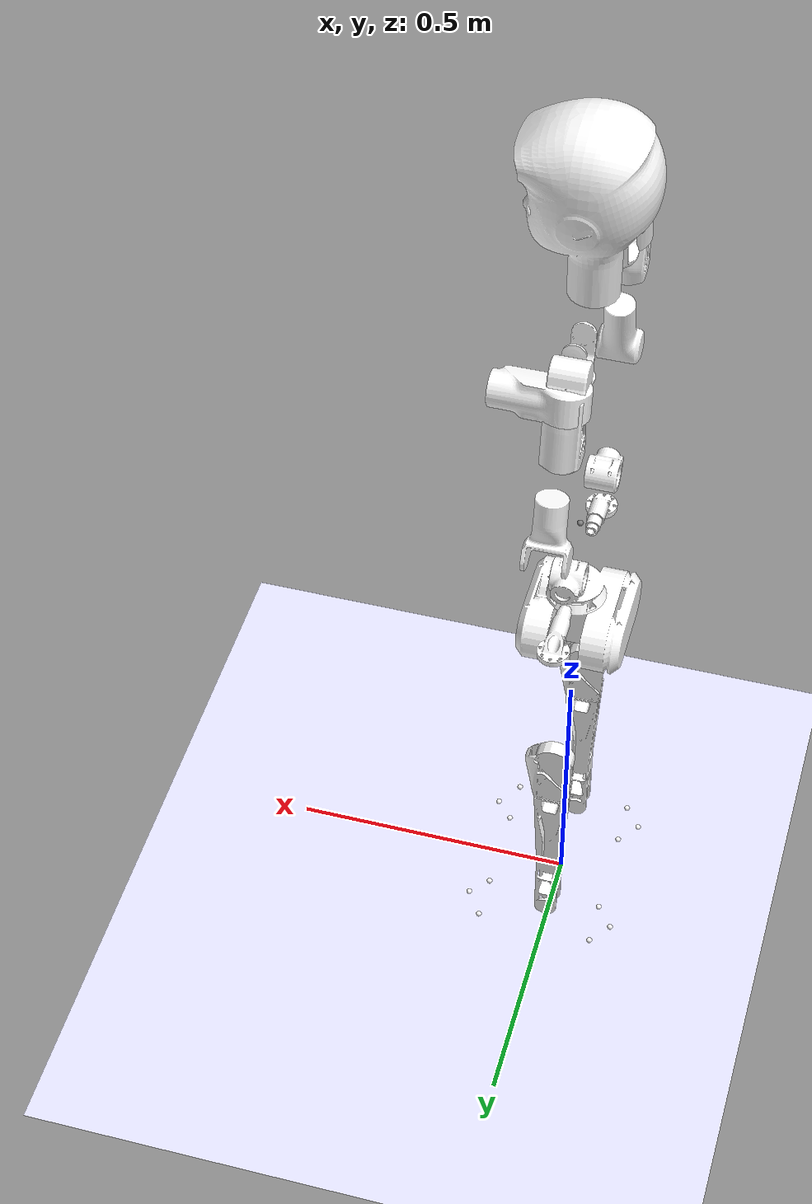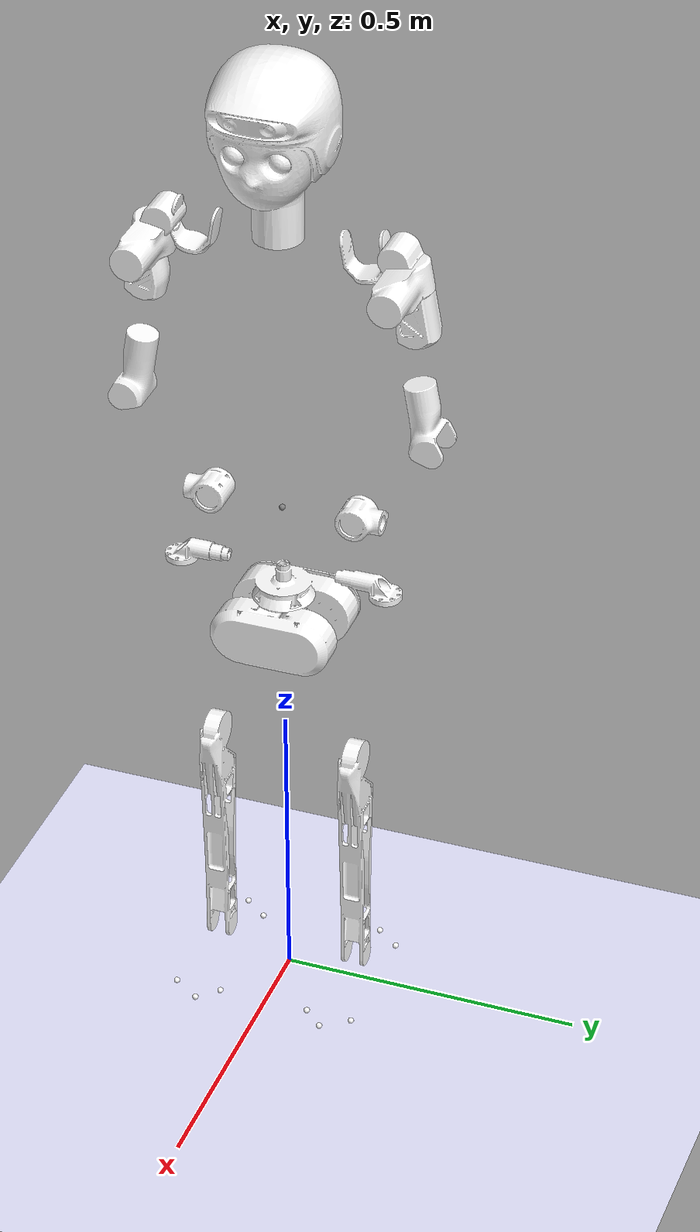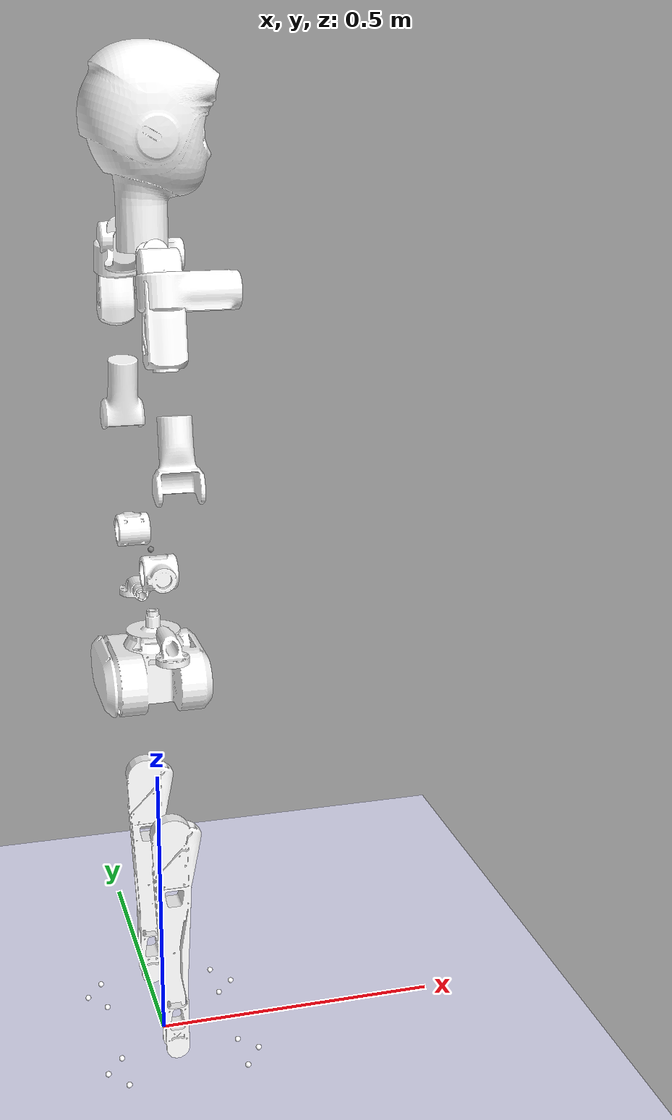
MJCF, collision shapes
<mujoco model="x2">
  <compiler angle="radian" meshdir="./meshes/"/>
  <default>
    <joint damping="0.1" armature="0.01" frictionloss="0.1"/>
  </default>
  <asset>
      <texture type="skybox" builtin="gradient" rgb1="0 0 1" rgb2="1 1 1" width="800" height="800"/>
    <texture type="2d" name="groundplane" builtin="checker" mark="edge" rgb1="0.8 0.8 1" rgb2="1 1 1"  markrgb="0 0 0"
      width="300" height="300"/>
    <material name="groundplane" texture="groundplane" texuniform="true" texrepeat="5 5" reflectance="0"/>
    <texture type="skybox" builtin="gradient" rgb1=".4 .5 .6" rgb2="0 0 0" width="100" height="100"/>
    <texture builtin="flat" height="1278" mark="cross" markrgb="1 1 1" name="texgeom" random="0.01" rgb1="0.2 0.6 0.4" rgb2="0.8 0.6 0.4" type="cube" width="127"/>
    <texture name="texplane" builtin="checker" height="512" width="512" rgb1=".5 .6 .7" rgb2=".1 .315 .82" type="2d" />
    <material name="MatPlane" reflectance="0.5" shininess="0.01" specular="0.1" texrepeat="1 1" texture="texplane" texuniform="true" />

    <material name="collision" rgba="0.1 0.5 0.9 0"/>
    <mesh name="pelvis_link" file="pelvis_link.STL"/>
    <mesh name="L_hip_yaw_link" file="L_hip_yaw_link.STL"/>
    <mesh name="L_hip_roll_link" file="L_hip_roll_link.STL"/>
    <mesh name="L_hip_pitch_link" file="L_hip_pitch_link.STL"/>
    <mesh name="L_knee_pitch_link" file="L_knee_pitch_link.STL"/>
    <mesh name="L_ankle_pitch_link" file="L_ankle_pitch_link.STL"/>
    <mesh name="R_hip_yaw_link" file="R_hip_yaw_link.STL"/>
    <mesh name="R_hip_roll_link" file="R_hip_roll_link.STL"/>
    <mesh name="R_hip_pitch_link" file="R_hip_pitch_link.STL"/>
    <mesh name="R_knee_pitch_link" file="R_knee_pitch_link.STL"/>
    <mesh name="R_ankle_pitch_link" file="R_ankle_pitch_link.STL"/>
    <mesh name="waist_yaw_link" file="waist_yaw_link.STL"/>
    <mesh name="torso_link" file="torso_link.STL"/>
    <mesh name="logo_link" file="logo_link.STL"/>
    <mesh name="head_link" file="head_link.STL"/>
    <mesh name="L_shoulder_pitch_link" file="L_shoulder_pitch_link.STL"/>
    <mesh name="L_shoulder_roll_link" file="L_shoulder_roll_link.STL"/>
    <mesh name="L_shoulder_yaw_link" file="L_shoulder_yaw_link.STL"/>
    <mesh name="L_elbow_pitch_link" file="L_elbow_pitch_link.STL"/>
    <mesh name="R_shoulder_pitch_link" file="R_shoulder_pitch_link.STL"/>
    <mesh name="R_shoulder_roll_link" file="R_shoulder_roll_link.STL"/>
    <mesh name="R_shoulder_yaw_link" file="R_shoulder_yaw_link.STL"/>
    <mesh name="R_elbow_pitch_link" file="R_elbow_pitch_link.STL"/>
  </asset>

  <worldbody>
    <geom name="floor" size="0 0 0.01" type="plane" material="groundplane" contype="1" conaffinity="0" priority="1"
      friction="0.6" condim="3"/>
        <light diffuse=".5 .5 .5" pos="-3 -3 5" dir="3 3 -5" castshadow="true"/>
    <body name="pelvis_link" pos="0 0 0.91">>
      <inertial pos="-0.003423 9.09152e-08 0.307997" quat="0.999796 -8.3433e-08 0.0201933 -4.13088e-06" mass="15.9092" diaginertia="0.395894 0.38141 0.0882848"/>
      <joint name="pelvis_link" type="free" limited="false" actuatorfrclimited="false"/>
      <geom type="mesh" contype="0" conaffinity="0" group="1" density="0" rgba="1 1 1 1" mesh="pelvis_link"/>
      <geom type="mesh" rgba="1 1 1 1" mesh="pelvis_link"/>
      <site name="imu" pos="0 0 0"/>
      <geom pos="0 0 0.08375" type="mesh" contype="0" conaffinity="0" group="1" density="0" rgba="1 1 1 1" mesh="waist_yaw_link"/>
      <geom pos="0 0 0.1205" quat="1 0 0 0" type="mesh" contype="0" conaffinity="0" group="1" density="0" rgba="0.823529 0.823529 0.823529 1" mesh="torso_link"/>
      <geom pos="0 0 0.1205" quat="1 0 0 0" type="mesh" contype="0" conaffinity="0" group="1" density="0" rgba="1 0 0 1" mesh="logo_link"/>
      <geom pos="0 0 0.485" quat="1 0 0 0" type="mesh" contype="0" conaffinity="0" group="1" density="0" rgba="1 1 1 1" mesh="head_link"/>
      <geom pos="0 0 0.485" quat="1 0 0 0" type="mesh" rgba="1 1 1 1" mesh="head_link"/>
      <body name="L_hip_yaw_link">
        <inertial pos="-0.0005618 0.019831 0.00885104" quat="0.416547 0.491409 -0.566922 0.513426" mass="0.841" diaginertia="0.00175713 0.00175343 0.000573392"/>
        <joint name="L_hip_yaw" pos="0 0 0" axis="0 0 1" range="-0.7854 0.7854" actuatorfrcrange="-100 100"/>
        <geom type="mesh" contype="0" conaffinity="0" group="1" density="0" rgba="1 1 1 1" mesh="L_hip_yaw_link"/>
        <body name="L_hip_roll_link" pos="-0.0095 0.12 0">
          <inertial pos="-0.0324725 0.00017925 -0.0726484" quat="0.655395 -0.252501 -0.247695 0.667344" mass="2.667" diaginertia="0.0108627 0.0094793 0.00603247"/>
          <joint name="L_hip_roll" pos="0 0 0" axis="1 0 0" range="-0.349 0.524" actuatorfrcrange="-100 100"/>
          <geom type="mesh" contype="0" conaffinity="0" group="1" density="0" rgba="1 1 1 1" mesh="L_hip_roll_link"/>
          <geom type="mesh" rgba="1 1 1 1" mesh="L_hip_roll_link"/>
          <body name="L_hip_pitch_link" pos="0.0085 -0.001 -0.11">
            <inertial pos="0.00382921 0 -0.185484" quat="0.706562 0.0278169 0.0278188 0.706557" mass="1.664" diaginertia="0.0148443 0.0145077 0.0030868"/>
            <joint name="L_hip_pitch" pos="0 0 0" axis="0 1 0" range="-2.4434 0.526" actuatorfrcrange="-100 100"/>
            <geom type="mesh" contype="0" conaffinity="0" group="1" density="0" rgba="1 1 1 1" mesh="L_hip_pitch_link"/>
            <geom type="mesh" rgba="1 1 1 1" mesh="L_hip_pitch_link"/>
            <body name="L_knee_pitch_link" pos="0 0 -0.35">
              <inertial pos="0.00140265 0 -0.15876" quat="0.706958 -0.0143173 -0.0143148 0.706965" mass="1.125" diaginertia="0.00999859 0.00987345 0.00100926"/>
              <joint name="L_knee_pitch" pos="0 0 0" axis="0 1 0" range="0 2.3561" actuatorfrcrange="-100 100"/>
              <geom type="mesh" contype="0" conaffinity="0" group="1" density="0" rgba="1 1 1 1" mesh="L_knee_pitch_link"/>
              <geom type="mesh" rgba="1 1 1 1" mesh="L_knee_pitch_link"/>
              <body name="L_ankle_pitch_link" pos="0 0 -0.35">
                <inertial pos="0.0393988 -0.000237278 -0.0784143" quat="0.000325049 0.702196 0.00149391 0.711983" mass="0.556154" diaginertia="0.00260529 0.00243297 0.000325398"/>
                <joint name="L_ankle_pitch" pos="0 0 0" axis="0 1 0" range="-1.2217 1.2217" actuatorfrcrange="-50 50"/>
                <geom type="mesh" contype="0" conaffinity="0" group="1" density="0" rgba="1 1 1 1" mesh="L_ankle_pitch_link" euler="0 0.07 0"/>
                <geom size="0.005" pos="-0.12   0     -0.095" rgba="1 1 1 1"/>
                <geom size="0.005" pos="-0.09   0.039 -0.095" rgba="1 1 1 1"/>
                <geom size="0.005" pos="-0.09  -0.039 -0.095" rgba="1 1 1 1"/>
                <geom size="0.005" pos="0.12    0.035 -0.095" rgba="1 1 1 1"/>
                <geom size="0.005" pos="0.12   -0.043 -0.095" rgba="1 1 1 1"/>
                <geom size="0.005" pos="0.15   -0.01  -0.095" rgba="1 1 1 1"/>

              </body>
            </body>
          </body>
        </body>
      </body>
      <body name="R_hip_yaw_link">
        <inertial pos="-0.00116447 -0.0404495 0" quat="0.707002 0.707002 -0.0121739 -0.0121739" mass="0.219202" diaginertia="0.000598763 0.000555362 0.000156982"/>
        <joint name="R_hip_yaw" pos="0 0 0" axis="0 0 1" range="-0.7854 0.7854" actuatorfrcrange="-100 100"/>
        <geom type="mesh" contype="0" conaffinity="0" group="1" density="0" rgba="1 1 1 1" mesh="R_hip_yaw_link"/>
        <body name="R_hip_roll_link" pos="-0.0095 -0.12 0">
          <inertial pos="-0.0324725 0.00017925 -0.0726484" quat="0.655395 -0.252501 -0.247695 0.667344" mass="2.667" diaginertia="0.0108627 0.0094793 0.00603247"/>
          <joint name="R_hip_roll" pos="0 0 0" axis="1 0 0" range="-0.524 0.349" actuatorfrcrange="-100 100"/>
          <geom type="mesh" contype="0" conaffinity="0" group="1" density="0" rgba="1 1 1 1" mesh="R_hip_roll_link"/>
          <geom type="mesh" rgba="1 1 1 1" mesh="R_hip_roll_link"/>
          <body name="R_hip_pitch_link" pos="0.0085 -0.001 -0.11">
            <inertial pos="0.00382921 0 -0.185485" quat="0.706557 0.0278188 0.0278169 0.706562" mass="1.664" diaginertia="0.0148443 0.0145077 0.0030868"/>
            <joint name="R_hip_pitch" pos="0 0 0" axis="0 1 0" range="-2.4434 0.526" actuatorfrcrange="-100 100"/>
            <geom type="mesh" contype="0" conaffinity="0" group="1" density="0" rgba="1 1 1 1" mesh="R_hip_pitch_link"/>
            <geom type="mesh" rgba="1 1 1 1" mesh="R_hip_pitch_link"/>
            <body name="R_knee_pitch_link" pos="0 0 -0.35">
              <inertial pos="0.00140265 0 -0.15876" quat="0.706965 -0.0143148 -0.0143173 0.706958" mass="1.125" diaginertia="0.00999859 0.00987345 0.00100926"/>
              <joint name="R_knee_pitch" pos="0 0 0" axis="0 1 0" range="0 2.3561" actuatorfrcrange="-100 100"/>
              <geom type="mesh" contype="0" conaffinity="0" group="1" density="0" rgba="1 1 1 1" mesh="R_knee_pitch_link"/>
              <geom type="mesh" rgba="1 1 1 1" mesh="R_knee_pitch_link"/>
              <body name="R_ankle_pitch_link" pos="0 0 -0.35">
                <inertial pos="0.0393998 0.00023708 -0.0784145" quat="-0.000325049 0.702196 -0.00149391 0.711983" mass="0.556161" diaginertia="0.00260529 0.00243297 0.000325398"/>
                <joint name="R_ankle_pitch" pos="0 0 0" axis="0 1 0" range="-1.2217 1.2217" actuatorfrcrange="-50 50"/>
                <geom type="mesh" contype="0" conaffinity="0" group="1" density="0" rgba="1 1 1 1" mesh="R_ankle_pitch_link" euler="0 0.07 0"/>
                <geom size="0.005" pos="-0.12   0     -0.095" rgba="1 1 1 1"/>
                <geom size="0.005" pos="-0.09   0.039 -0.095" rgba="1 1 1 1"/>
                <geom size="0.005" pos="-0.09  -0.039 -0.095" rgba="1 1 1 1"/>
                <geom size="0.005" pos="0.12   -0.035 -0.095" rgba="1 1 1 1"/>
                <geom size="0.005" pos="0.12    0.043 -0.095" rgba="1 1 1 1"/>
                <geom size="0.005" pos="0.15    0.01  -0.095" rgba="1 1 1 1"/>
              </body>
            </body>
          </body>
        </body>
      </body>
      <body name="L_shoulder_pitch_link" pos="-0.01 0.14477 0.43584" quat="0.996195 0.0871543 0 0">
        <inertial pos="0 0.0287048 6.45e-05" quat="0.000604104 0.707107 0.000604104 0.707107" mass="0.08" diaginertia="9.30701e-05 6.96599e-05 4.183e-05"/>
        <joint name="L_shoulder_pitch" pos="0 0 0" axis="0 1 0" range="-2 2" actuatorfrcrange="-30 30"/>
        <geom type="mesh" contype="0" conaffinity="0" group="1" density="0" rgba="1 1 1 1" mesh="L_shoulder_pitch_link"/>
        <geom type="mesh" rgba="1 1 1 1" mesh="L_shoulder_pitch_link"/>
        <body name="L_shoulder_roll_link" pos="0 0.061 0">
          <inertial pos="-0.00014962 0.00021332 -0.0425362" quat="0.707314 -0.000506345 0.00377108 0.706889" mass="0.8" diaginertia="0.000555526 0.000535819 0.000122295"/>
          <joint name="L_shoulder_roll" pos="0 0 0" axis="1 0 0" range="-0.35 1.57" actuatorfrcrange="-30 30"/>
          <geom type="mesh" contype="0" conaffinity="0" group="1" density="0" rgba="1 1 1 1" mesh="L_shoulder_roll_link"/>
          <geom type="mesh" rgba="1 1 1 1" mesh="L_shoulder_roll_link"/>
          <body name="L_shoulder_yaw_link" pos="0 0 -0.112">
            <inertial pos="0.0049554 -0.00024132 -0.14234" quat="0.999356 0.00104793 0.0349421 -0.00803437" mass="0.5" diaginertia="0.000629602 0.000609218 9.69596e-05"/>
            <joint name="L_shoulder_yaw" pos="0 0 0" axis="0 0 1" range="-2.618 2.618" actuatorfrcrange="-30 30"/>
            <geom type="mesh" contype="0" conaffinity="0" group="1" density="0" rgba="1 1 1 1" mesh="L_shoulder_yaw_link"/>
            <geom type="mesh" rgba="1 1 1 1" mesh="L_shoulder_yaw_link"/>
            <body name="L_elbow_pitch_link" pos="0.01 0 -0.173" quat="0.707388 0 -0.706825 0">
              <inertial pos="-0.0123066 0 -0.21266" quat="0.999963 5.39253e-06 -0.00855256 0.000630494" mass="0.1" diaginertia="0.000488126 0.00048799 2.44366e-05"/>
              <joint name="L_elbow_pitch" pos="0 0 0" axis="0 1 0" range="-2.5 2.5" actuatorfrcrange="-30 30"/>
              <geom type="mesh" contype="0" conaffinity="0" group="1" density="0" rgba="1 1 1 1" mesh="L_elbow_pitch_link"/>
              <geom type="mesh" rgba="1 1 1 1" mesh="L_elbow_pitch_link"/>
            </body>
          </body>
        </body>
      </body>
      <body name="R_shoulder_pitch_link" pos="-0.01 -0.14477 0.43584" quat="0.996195 -0.0871543 0 0">
        <inertial pos="0 -0.0287048 6.45e-05" quat="-0.000604104 0.707107 -0.000604104 0.707107" mass="0.08" diaginertia="9.30701e-05 6.96599e-05 4.183e-05"/>
        <joint name="R_shoulder_pitch" pos="0 0 0" axis="0 1 0" range="-2 2" actuatorfrcrange="-30 30"/>
        <geom type="mesh" contype="0" conaffinity="0" group="1" density="0" rgba="1 1 1 1" mesh="R_shoulder_pitch_link"/>
        <geom type="mesh" rgba="1 1 1 1" mesh="R_shoulder_pitch_link"/>
        <body name="R_shoulder_roll_link" pos="0 -0.061 0">
          <inertial pos="0.00014963 -0.00021332 -0.0425362" quat="0.707314 0.000506345 -0.00377108 0.706889" mass="0.8" diaginertia="0.000555526 0.000535819 0.000122295"/>
          <joint name="R_shoulder_roll" pos="0 0 0" axis="1 0 0" range="-1.57 0.35" actuatorfrcrange="-30 30"/>
          <geom type="mesh" contype="0" conaffinity="0" group="1" density="0" rgba="1 1 1 1" mesh="R_shoulder_roll_link"/>
          <geom type="mesh" rgba="1 1 1 1" mesh="R_shoulder_roll_link"/>
          <body name="R_shoulder_yaw_link" pos="-3.8964e-05 0 -0.112">
            <inertial pos="0.0049944 -0.00024129 -0.142337" quat="0.999356 0.00104793 0.0349421 -0.00803437" mass="0.5" diaginertia="0.000629602 0.000609218 9.69596e-05"/>
            <joint name="R_shoulder_yaw" pos="0 0 0" axis="0 0 1" range="-2.618 2.618" actuatorfrcrange="-30 30"/>
            <geom type="mesh" contype="0" conaffinity="0" group="1" density="0" rgba="1 1 1 1" mesh="R_shoulder_yaw_link"/>
            <geom type="mesh" rgba="1 1 1 1" mesh="R_shoulder_yaw_link"/>
            <body name="R_elbow_pitch_link" pos="0.010039 0 -0.173" quat="0.707388 0 -0.706825 0">
              <inertial pos="-0.0123066 0 -0.21266" quat="0.999963 5.39253e-06 -0.00855256 0.000630494" mass="0.1" diaginertia="0.000488126 0.00048799 2.44366e-05"/>
              <joint name="R_elbow_pitch" pos="0 0 0" axis="0 1 0" range="-2.5 2.5" actuatorfrcrange="-30 30"/>
              <geom type="mesh" contype="0" conaffinity="0" group="1" density="0" rgba="1 1 1 1" mesh="R_elbow_pitch_link"/>
              <geom type="mesh" rgba="1 1 1 1" mesh="R_elbow_pitch_link"/>
            </body>
          </body>
        </body>
      </body>
    </body>
  </worldbody>

  <actuator>
    <motor name="L_hip_yaw" joint="L_hip_yaw"/>
    <motor name="L_hip_roll" joint="L_hip_roll"/>
    <motor name="L_hip_pitch" joint="L_hip_pitch"/>
    <motor name="L_knee_pitch" joint="L_knee_pitch"/>
    <motor name="L_ankle_pitch" joint="L_ankle_pitch"/>
    <motor name="R_hip_yaw" joint="R_hip_yaw"/>
    <motor name="R_hip_roll" joint="R_hip_roll"/>
    <motor name="R_hip_pitch" joint="R_hip_pitch"/>
    <motor name="R_knee_pitch" joint="R_knee_pitch"/>
    <motor name="R_ankle_pitch" joint="R_ankle_pitch"/>
    <motor name="L_shoulder_pitch" joint="L_shoulder_pitch"/>
    <motor name="L_shoulder_roll" joint="L_shoulder_roll"/>
    <motor name="L_shoulder_yaw" joint="L_shoulder_yaw"/>
    <motor name="L_elbow_pitch" joint="L_elbow_pitch"/>
    <motor name="R_shoulder_pitch" joint="R_shoulder_pitch"/>
    <motor name="R_shoulder_roll" joint="R_shoulder_roll"/>
    <motor name="R_shoulder_yaw" joint="R_shoulder_yaw"/>
    <motor name="R_elbow_pitch" joint="R_elbow_pitch"/>
  </actuator>
  <sensor>

        <framequat name="BodyQuat" objtype="site" objname="imu"/>
  </sensor>
</mujoco>
